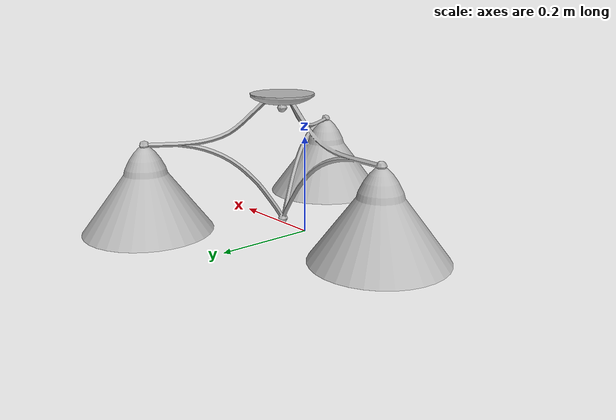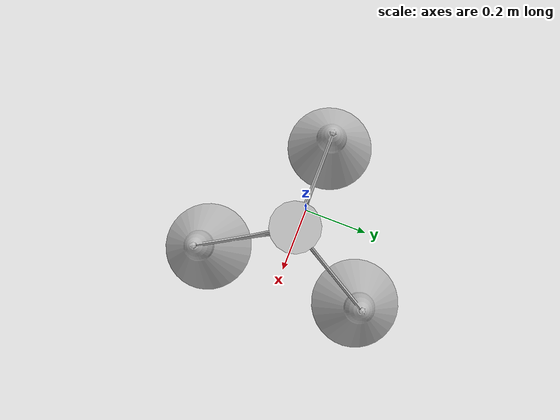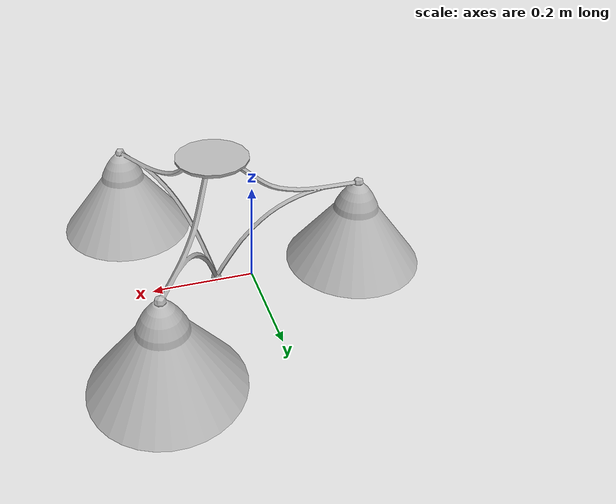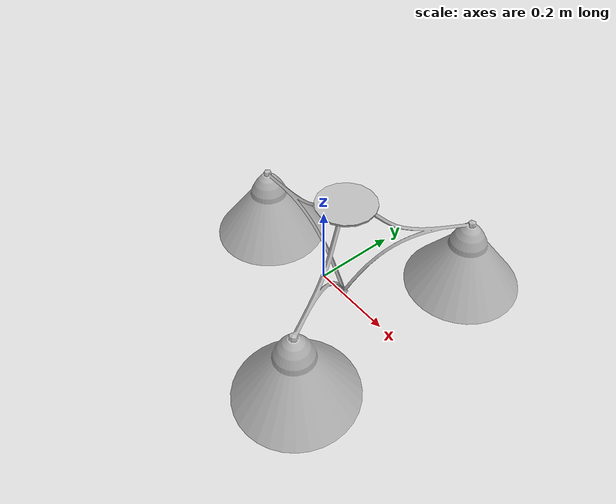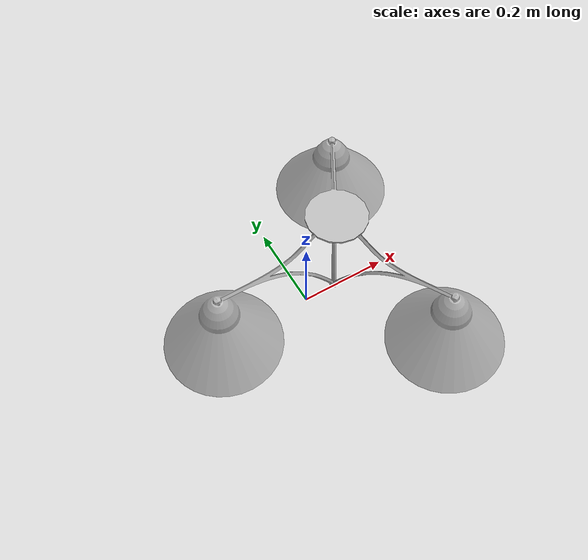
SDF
<?xml version='1.0'?>
<sdf version='1.4'>
  <model name='631'>
    <pose>0 0 0 0 0 0</pose>
    <static>true</static>
    <link name='link'>
      <collision name='collision'>
        <pose>0 0 0 0 0 0</pose>
        <geometry>
          <box>
            <size>0.699558 0.759994 2</size>
          </box>
        </geometry>
      </collision>
      <visual name='visual'>
        <pose>0 0 0 0 0 0</pose>
        <geometry>
          <mesh><uri>model://631/631.dae</uri></mesh>
        </geometry>
      </visual>
    </link>
  </model>
</sdf>
